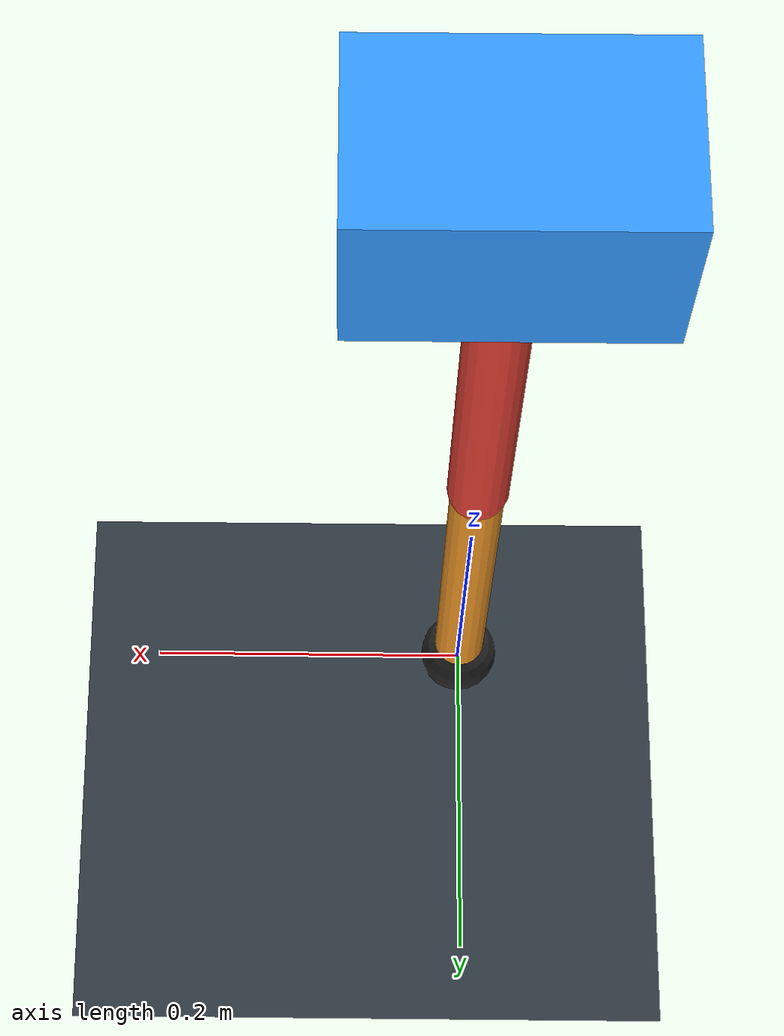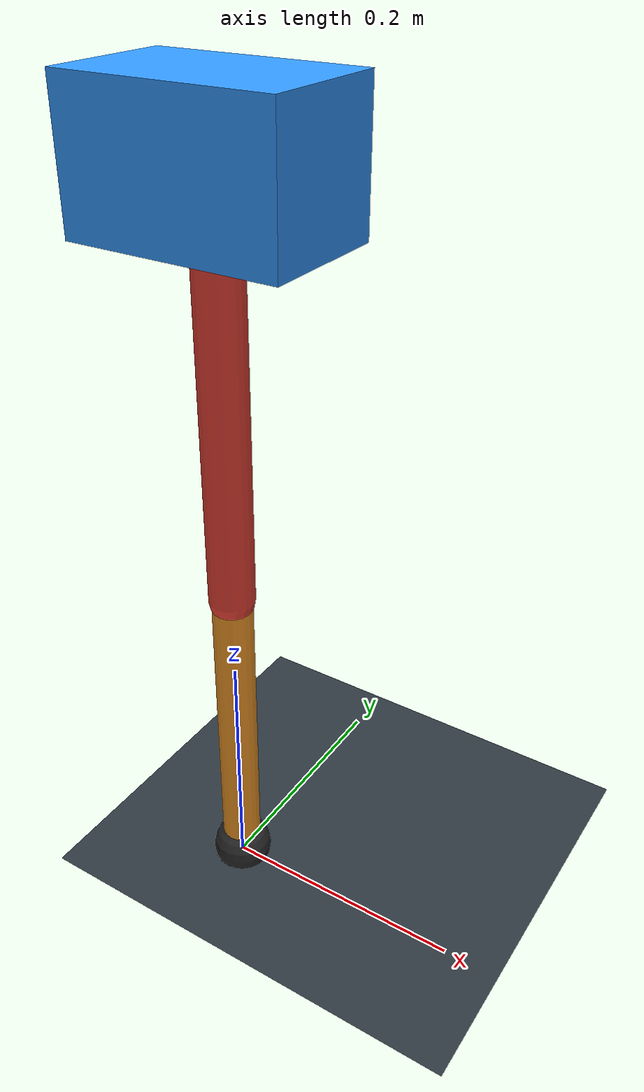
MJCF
<mujoco model="single_axis_two_bar">
  <compiler angle="radian" inertiafromgeom="true"/>
  <option timestep="0.001" integrator="implicitfast" gravity="0 0 -9.81"/>
  <default>
    <joint damping="0.08"/>
    <geom friction="1.2 0.01 0.0001" condim="3"/>
  </default>
  <worldbody>
    <geom name="floor" type="plane" size="5 5 0.1" rgba="0.18 0.22 0.25 1"/>
    <body name="carriage" pos="0 0 0.5907915231434616">
      <joint name="pole_slide" type="slide" axis="0 0 1"/>
      <geom name="payload" type="box" size="0.08 0.05 0.05" mass="2.28275956746851" rgba="0.2 0.6 1 1"/>
      <body name="thigh" pos="0 0 0">
        <joint name="hip" type="hinge" axis="0 1 0"/>
        <geom name="thigh_link" type="capsule" fromto="0 0 0 0 0 -0.3212053404921873" size="0.018" mass="0.22886304945478564" rgba="0.9 0.25 0.2 1"/>
        <body name="shank" pos="0 0 -0.3212053404921873">
          <joint name="knee" type="hinge" axis="0 1 0"/>
          <geom name="shank_link" type="capsule" fromto="0 0 0 0 0 -0.26208488955261844" size="0.016" mass="0.18673894695250834" rgba="0.95 0.6 0.15 1"/>
          <geom name="foot" type="sphere" pos="0 0 -0.26208488955261844" size="0.025" mass="0.03" rgba="0.15 0.15 0.15 1"/>
          <site name="toe" pos="0 0 -0.26208488955261844" size="0.008"/>
        </body>
      </body>
    </body>
  </worldbody>
  <actuator>
    <motor name="hip_motor" joint="hip" ctrlrange="-25.61861303679544 25.61861303679544"/>
    <motor name="knee_motor" joint="knee" ctrlrange="-78.3661048840758 78.3661048840758"/>
  </actuator>
</mujoco>
